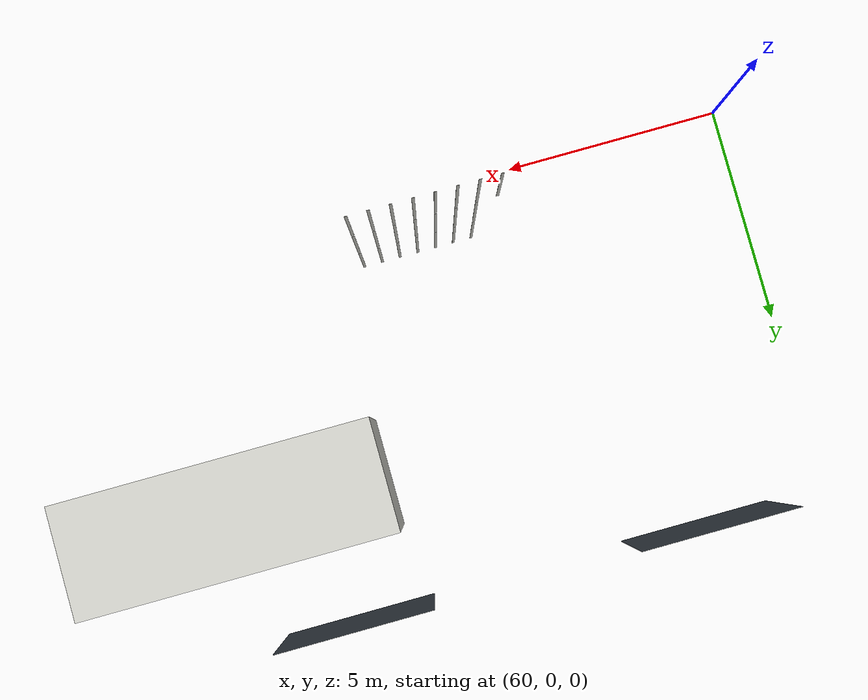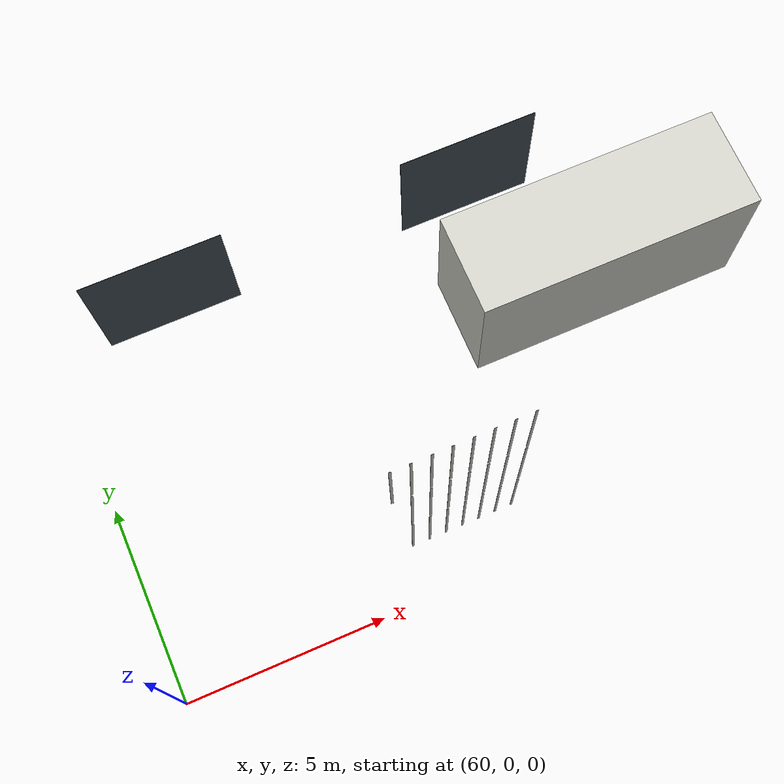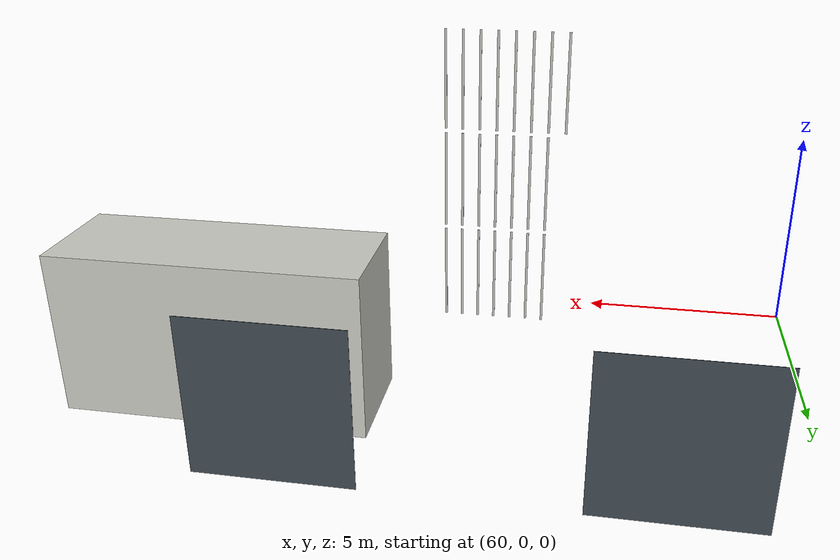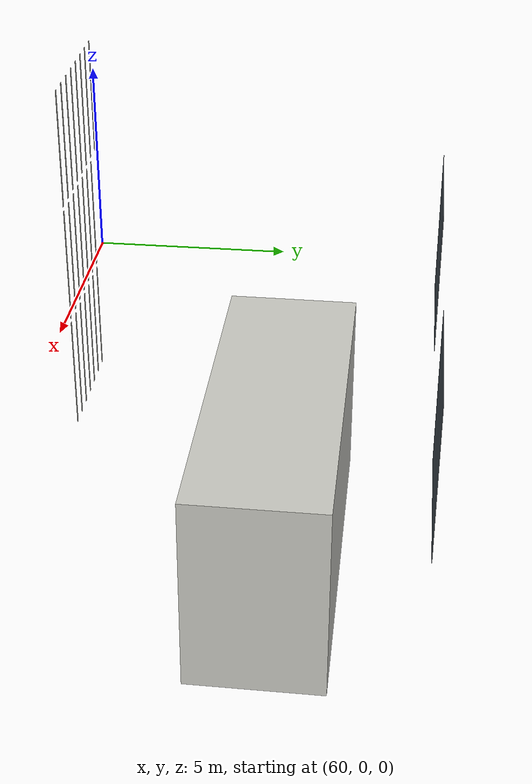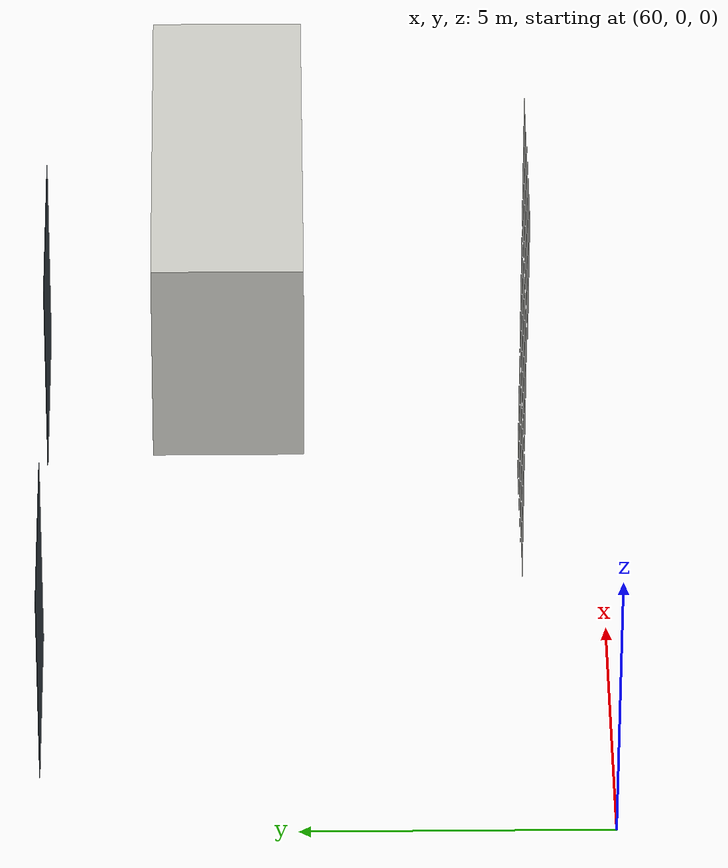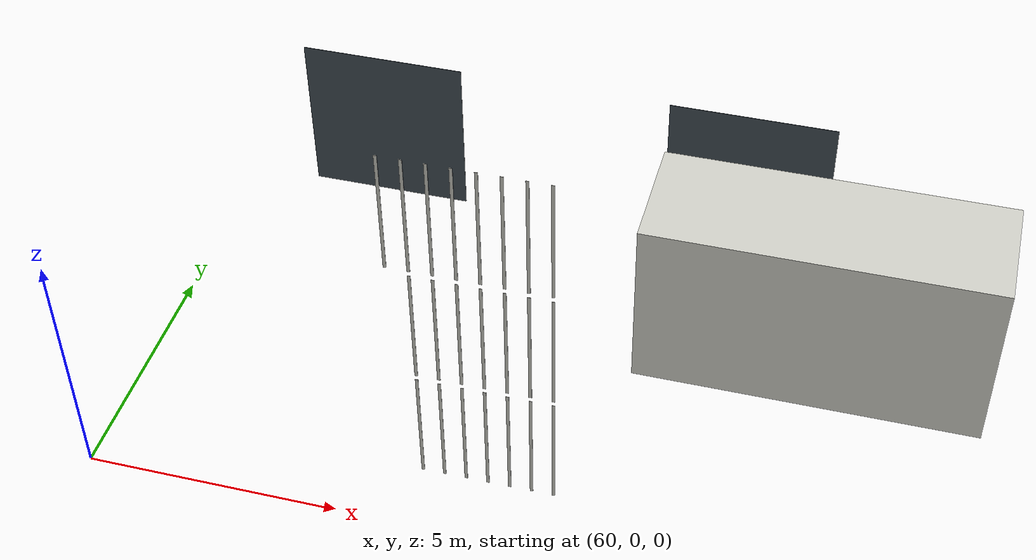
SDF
<sdf version="1.9">
 <world name="iris_mppi_yard_runup60">
  <model name="north_loading_door_18">
   <static>true</static>
   <pose>63.1 9.094999999999999 1.8 0.0 0.0 0.0</pose>
   <link name="body">
    <visual name="visual">
     <geometry><box><size>3.5 0.01 3.6</size></box></geometry>
     <material><ambient>.25 .29 .32 1</ambient><diffuse>.25 .29 .32 1</diffuse></material>
    </visual>
   </link>
  </model>
  <model name="north_loading_door_26">
   <static>true</static>
   <pose>71.1 9.094999999999999 1.8 0.0 0.0 0.0</pose>
   <link name="body">
    <visual name="visual">
     <geometry><box><size>3.5 0.01 3.6</size></box></geometry>
     <material><ambient>.25 .29 .32 1</ambient><diffuse>.25 .29 .32 1</diffuse></material>
    </visual>
   </link>
  </model>
  <model name="rib_1_0_7_1">
   <static>true</static>
   <pose>66.31 1.318 1.3 0.0 0.0 0.0</pose>
   <link name="body">
    <visual name="visual">
     <geometry><box><size>0.06 0.008 2.5</size></box></geometry>
     <material><ambient>.75 .75 .72 1</ambient><diffuse>.75 .75 .72 1</diffuse></material>
    </visual>
   </link>
  </model>
  <model name="rib_1_0_8_1">
   <static>true</static>
   <pose>66.74000000000001 1.318 1.3 0.0 0.0 0.0</pose>
   <link name="body">
    <visual name="visual">
     <geometry><box><size>0.06 0.008 2.5</size></box></geometry>
     <material><ambient>.75 .75 .72 1</ambient><diffuse>.75 .75 .72 1</diffuse></material>
    </visual>
   </link>
  </model>
  <model name="rib_1_0_9_1">
   <static>true</static>
   <pose>67.17 1.318 1.3 0.0 0.0 0.0</pose>
   <link name="body">
    <visual name="visual">
     <geometry><box><size>0.06 0.008 2.5</size></box></geometry>
     <material><ambient>.75 .75 .72 1</ambient><diffuse>.75 .75 .72 1</diffuse></material>
    </visual>
   </link>
  </model>
  <model name="rib_1_0_10_1">
   <static>true</static>
   <pose>67.6 1.318 1.3 0.0 0.0 0.0</pose>
   <link name="body">
    <visual name="visual">
     <geometry><box><size>0.06 0.008 2.5</size></box></geometry>
     <material><ambient>.75 .75 .72 1</ambient><diffuse>.75 .75 .72 1</diffuse></material>
    </visual>
   </link>
  </model>
  <model name="rib_1_0_11_1">
   <static>true</static>
   <pose>68.03 1.318 1.3 0.0 0.0 0.0</pose>
   <link name="body">
    <visual name="visual">
     <geometry><box><size>0.06 0.008 2.5</size></box></geometry>
     <material><ambient>.75 .75 .72 1</ambient><diffuse>.75 .75 .72 1</diffuse></material>
    </visual>
   </link>
  </model>
  <model name="rib_1_0_12_1">
   <static>true</static>
   <pose>68.46000000000001 1.318 1.3 0.0 0.0 0.0</pose>
   <link name="body">
    <visual name="visual">
     <geometry><box><size>0.06 0.008 2.5</size></box></geometry>
     <material><ambient>.75 .75 .72 1</ambient><diffuse>.75 .75 .72 1</diffuse></material>
    </visual>
   </link>
  </model>
  <model name="rib_1_0_13_1">
   <static>true</static>
   <pose>68.89 1.318 1.3 0.0 0.0 0.0</pose>
   <link name="body">
    <visual name="visual">
     <geometry><box><size>0.06 0.008 2.5</size></box></geometry>
     <material><ambient>.75 .75 .72 1</ambient><diffuse>.75 .75 .72 1</diffuse></material>
    </visual>
   </link>
  </model>
  <model name="rib_1_1_7_1">
   <static>true</static>
   <pose>66.31 1.318 3.9000000000000004 0.0 0.0 0.0</pose>
   <link name="body">
    <visual name="visual">
     <geometry><box><size>0.06 0.008 2.5</size></box></geometry>
     <material><ambient>.75 .75 .72 1</ambient><diffuse>.75 .75 .72 1</diffuse></material>
    </visual>
   </link>
  </model>
  <model name="rib_1_1_8_1">
   <static>true</static>
   <pose>66.74000000000001 1.318 3.9000000000000004 0.0 0.0 0.0</pose>
   <link name="body">
    <visual name="visual">
     <geometry><box><size>0.06 0.008 2.5</size></box></geometry>
     <material><ambient>.75 .75 .72 1</ambient><diffuse>.75 .75 .72 1</diffuse></material>
    </visual>
   </link>
  </model>
  <model name="rib_1_1_9_1">
   <static>true</static>
   <pose>67.17 1.318 3.9000000000000004 0.0 0.0 0.0</pose>
   <link name="body">
    <visual name="visual">
     <geometry><box><size>0.06 0.008 2.5</size></box></geometry>
     <material><ambient>.75 .75 .72 1</ambient><diffuse>.75 .75 .72 1</diffuse></material>
    </visual>
   </link>
  </model>
  <model name="rib_1_1_10_1">
   <static>true</static>
   <pose>67.6 1.318 3.9000000000000004 0.0 0.0 0.0</pose>
   <link name="body">
    <visual name="visual">
     <geometry><box><size>0.06 0.008 2.5</size></box></geometry>
     <material><ambient>.75 .75 .72 1</ambient><diffuse>.75 .75 .72 1</diffuse></material>
    </visual>
   </link>
  </model>
  <model name="rib_1_1_11_1">
   <static>true</static>
   <pose>68.03 1.318 3.9000000000000004 0.0 0.0 0.0</pose>
   <link name="body">
    <visual name="visual">
     <geometry><box><size>0.06 0.008 2.5</size></box></geometry>
     <material><ambient>.75 .75 .72 1</ambient><diffuse>.75 .75 .72 1</diffuse></material>
    </visual>
   </link>
  </model>
  <model name="rib_1_1_12_1">
   <static>true</static>
   <pose>68.46000000000001 1.318 3.9000000000000004 0.0 0.0 0.0</pose>
   <link name="body">
    <visual name="visual">
     <geometry><box><size>0.06 0.008 2.5</size></box></geometry>
     <material><ambient>.75 .75 .72 1</ambient><diffuse>.75 .75 .72 1</diffuse></material>
    </visual>
   </link>
  </model>
  <model name="rib_1_1_13_1">
   <static>true</static>
   <pose>68.89 1.318 3.9000000000000004 0.0 0.0 0.0</pose>
   <link name="body">
    <visual name="visual">
     <geometry><box><size>0.06 0.008 2.5</size></box></geometry>
     <material><ambient>.75 .75 .72 1</ambient><diffuse>.75 .75 .72 1</diffuse></material>
    </visual>
   </link>
  </model>
  <model name="rib_1_2_6_1">
   <static>true</static>
   <pose>65.88 1.318 6.5 0.0 0.0 0.0</pose>
   <link name="body">
    <visual name="visual">
     <geometry><box><size>0.06 0.008 2.5</size></box></geometry>
     <material><ambient>.75 .75 .72 1</ambient><diffuse>.75 .75 .72 1</diffuse></material>
    </visual>
   </link>
  </model>
  <model name="rib_1_2_7_1">
   <static>true</static>
   <pose>66.31 1.318 6.5 0.0 0.0 0.0</pose>
   <link name="body">
    <visual name="visual">
     <geometry><box><size>0.06 0.008 2.5</size></box></geometry>
     <material><ambient>.75 .75 .72 1</ambient><diffuse>.75 .75 .72 1</diffuse></material>
    </visual>
   </link>
  </model>
  <model name="rib_1_2_8_1">
   <static>true</static>
   <pose>66.74000000000001 1.318 6.5 0.0 0.0 0.0</pose>
   <link name="body">
    <visual name="visual">
     <geometry><box><size>0.06 0.008 2.5</size></box></geometry>
     <material><ambient>.75 .75 .72 1</ambient><diffuse>.75 .75 .72 1</diffuse></material>
    </visual>
   </link>
  </model>
  <model name="rib_1_2_9_1">
   <static>true</static>
   <pose>67.17 1.318 6.5 0.0 0.0 0.0</pose>
   <link name="body">
    <visual name="visual">
     <geometry><box><size>0.06 0.008 2.5</size></box></geometry>
     <material><ambient>.75 .75 .72 1</ambient><diffuse>.75 .75 .72 1</diffuse></material>
    </visual>
   </link>
  </model>
  <model name="rib_1_2_10_1">
   <static>true</static>
   <pose>67.6 1.318 6.5 0.0 0.0 0.0</pose>
   <link name="body">
    <visual name="visual">
     <geometry><box><size>0.06 0.008 2.5</size></box></geometry>
     <material><ambient>.75 .75 .72 1</ambient><diffuse>.75 .75 .72 1</diffuse></material>
    </visual>
   </link>
  </model>
  <model name="rib_1_2_11_1">
   <static>true</static>
   <pose>68.03 1.318 6.5 0.0 0.0 0.0</pose>
   <link name="body">
    <visual name="visual">
     <geometry><box><size>0.06 0.008 2.5</size></box></geometry>
     <material><ambient>.75 .75 .72 1</ambient><diffuse>.75 .75 .72 1</diffuse></material>
    </visual>
   </link>
  </model>
  <model name="rib_1_2_12_1">
   <static>true</static>
   <pose>68.46000000000001 1.318 6.5 0.0 0.0 0.0</pose>
   <link name="body">
    <visual name="visual">
     <geometry><box><size>0.06 0.008 2.5</size></box></geometry>
     <material><ambient>.75 .75 .72 1</ambient><diffuse>.75 .75 .72 1</diffuse></material>
    </visual>
   </link>
  </model>
  <model name="rib_1_2_13_1">
   <static>true</static>
   <pose>68.89 1.318 6.5 0.0 0.0 0.0</pose>
   <link name="body">
    <visual name="visual">
     <geometry><box><size>0.06 0.008 2.5</size></box></geometry>
     <material><ambient>.75 .75 .72 1</ambient><diffuse>.75 .75 .72 1</diffuse></material>
    </visual>
   </link>
  </model>
  <model name="parked_trailer">
   <static>true</static>
   <pose>73.1 6.1 1.9 0.0 0.0 0.0</pose>
   <link name="body">
    <collision name="collision"><geometry><box><size>7 2.5 3.8</size></box></geometry></collision>
    <visual name="visual">
     <geometry><box><size>7 2.5 3.8</size></box></geometry>
     <material><ambient>.8 .8 .77 1</ambient><diffuse>.8 .8 .77 1</diffuse></material>
    </visual>
   </link>
  </model>
 </world>
</sdf>
